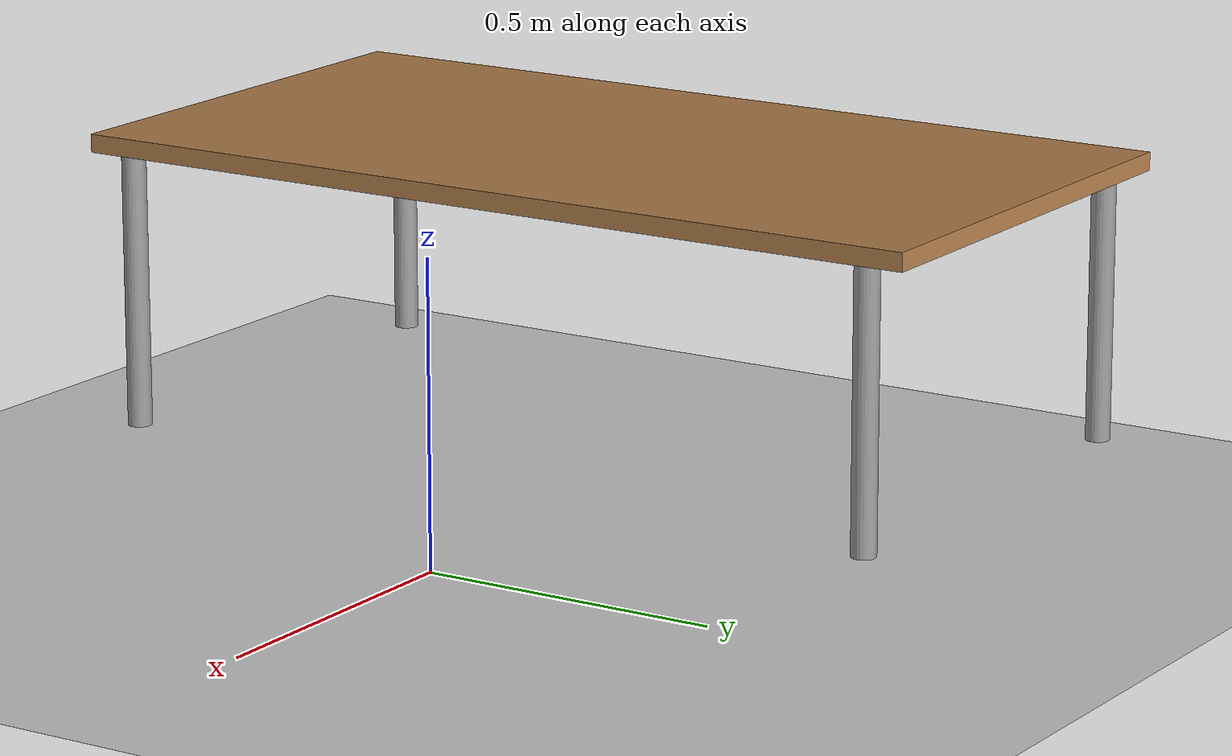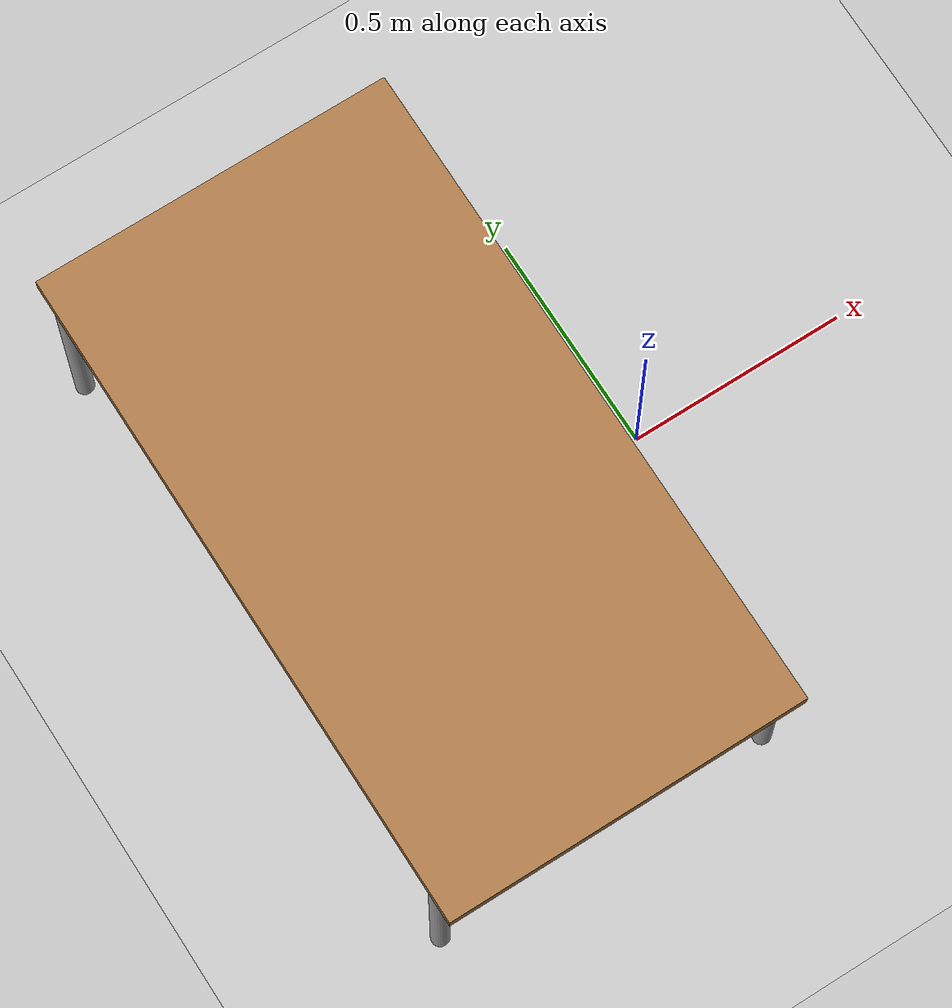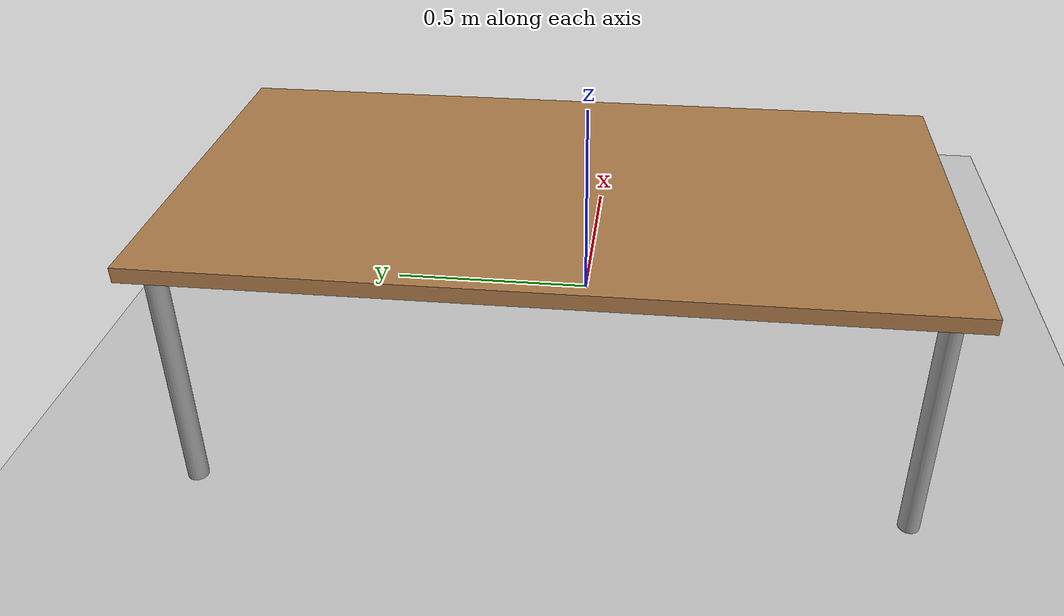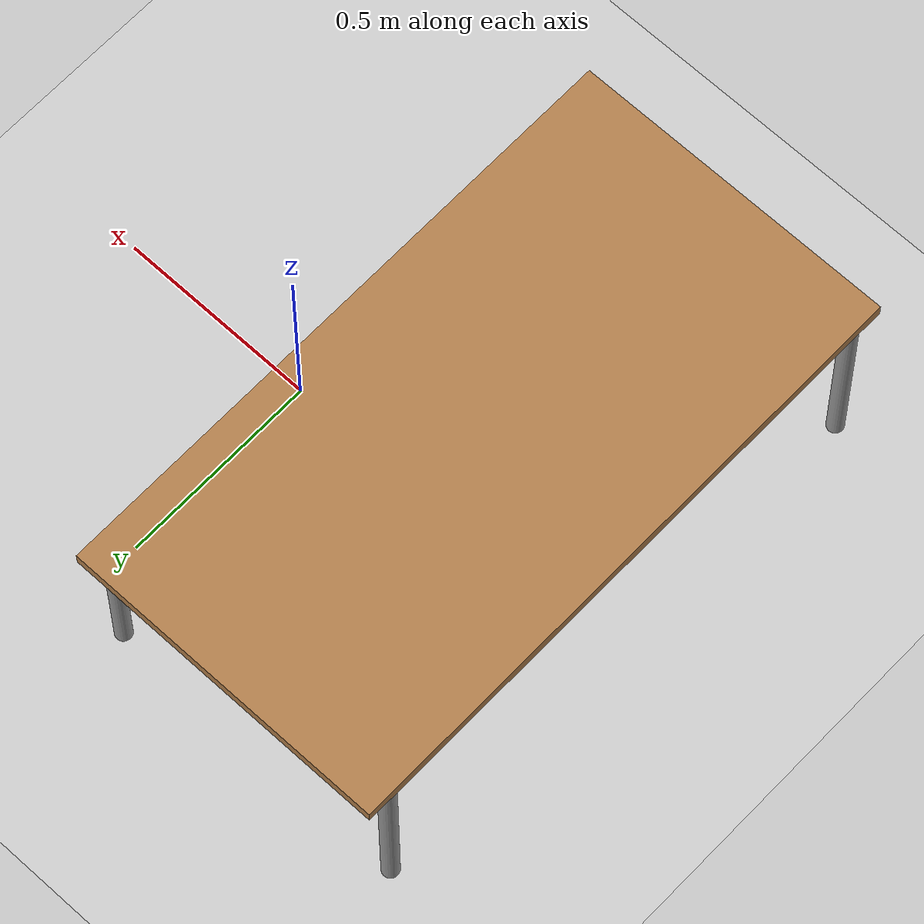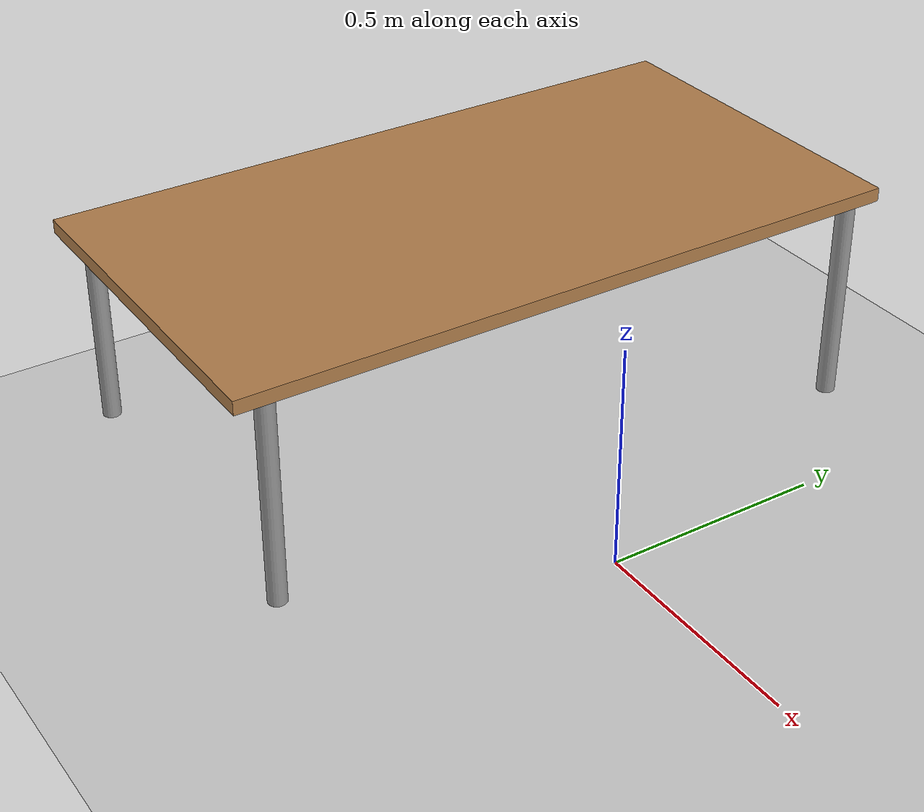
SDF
<sdf version="1.7">
 <world name="default">
  <include><uri>model://sun</uri></include>
  <light name="user_point_light_0" type="point">
   <pose>0.197302 -0.215077 1 0 -0 0</pose>
   <diffuse>0.5 0.5 0.5 1</diffuse>
   <specular>0.1 0.1 0.1 1</specular>
   <attenuation>
    <range>20</range>
    <constant>0.5</constant>
    <linear>0.01</linear>
    <quadratic>0.001</quadratic>
   </attenuation>
   <cast_shadows>0</cast_shadows>
   <direction>0 0 -1</direction>
  </light>
  <include><uri>model://ground_plane</uri></include>
  <include><uri>model://assignment_model-alignment-table</uri><pose>-0.530772 0 0.1 0 0 -1.57</pose></include>
 </world>
</sdf>

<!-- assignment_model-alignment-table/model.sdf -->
<sdf version="1.7">
  <model name="assignment_model-alignment-table">
    <static>true</static>
    <link name="table_root_link">
      <collision name="table_surface_collision">
	<pose>0 0 0.465 0 0 0</pose>
	<geometry>
          <box>
            <size>1.5 0.8 0.03</size>
          </box>
	</geometry>
	<surface>
          <friction>
            <ode>
              <mu>0.1</mu>
              <mu2>0.1</mu2>
            </ode>
          </friction>
	</surface>
      </collision>
      <visual name="table_surface_visual">
	<pose>0 0 0.465 0 0 0</pose>
	<geometry>
          <box>
            <size>1.5 0.8 0.03</size>
          </box>
	</geometry>
	<material>
          <script>
            <uri>file://media/materials/scripts/gazebo.material</uri>
            <name>Gazebo/Wood</name>
          </script>
	</material>
      </visual>
      <collision name="front_left_leg">
        <pose>0.68 0.38 0.225 0 0 0</pose>
        <geometry>
          <cylinder>
            <radius>0.02</radius>
            <length>0.45</length>
          </cylinder>
        </geometry>
      </collision>
      <visual name="front_left_leg">
        <pose>0.68 0.38 0.225 0 0 0</pose>
        <geometry>
          <cylinder>
            <radius>0.02</radius>
            <length>0.45</length>
          </cylinder>
        </geometry>
        <material>
          <script>
            <uri>file://media/materials/scripts/gazebo.material</uri>
            <name>Gazebo/Grey</name>
          </script>
        </material>
      </visual>
      <collision name="front_right_leg">
        <pose>0.68 -0.38 0.225 0 0 0</pose>
        <geometry>
          <cylinder>
            <radius>0.02</radius>
            <length>0.45</length>
          </cylinder>
        </geometry>
      </collision>
      <visual name="front_right_leg">
        <pose>0.68 -0.38 0.225 0 0 0</pose>
        <geometry>
          <cylinder>
            <radius>0.02</radius>
            <length>0.45</length>
          </cylinder>
        </geometry>
        <material>
          <script>
            <uri>file://media/materials/scripts/gazebo.material</uri>
            <name>Gazebo/Grey</name>
          </script>
        </material>
      </visual>
      <collision name="back_right_leg">
        <pose>-0.68 -0.38 0.225 0 0 0</pose>
        <geometry>
          <cylinder>
            <radius>0.02</radius>
            <length>0.45</length>
          </cylinder>
        </geometry>
      </collision>
      <visual name="back_right_leg">
        <pose>-0.68 -0.38 0.225 0 0 0</pose>
        <geometry>
          <cylinder>
            <radius>0.02</radius>
            <length>0.45</length>
          </cylinder>
        </geometry>
        <material>
          <script>
            <uri>file://media/materials/scripts/gazebo.material</uri>
            <name>Gazebo/Grey</name>
          </script>
        </material>
      </visual>
      <collision name="back_left_leg">
        <pose>-0.68 0.38 0.225 0 0 0</pose>
        <geometry>
          <cylinder>
            <radius>0.02</radius>
            <length>0.45</length>
          </cylinder>
        </geometry>
      </collision>
      <visual name="back_left_leg">
        <pose>-0.68 0.38 0.225 0 0 0</pose>
        <geometry>
          <cylinder>
            <radius>0.02</radius>
            <length>0.45</length>
          </cylinder>
        </geometry>
        <material>
          <script>
            <uri>file://media/materials/scripts/gazebo.material</uri>
            <name>Gazebo/Grey</name>
          </script>
        </material>
      </visual>
    </link>
  </model>
</sdf>
